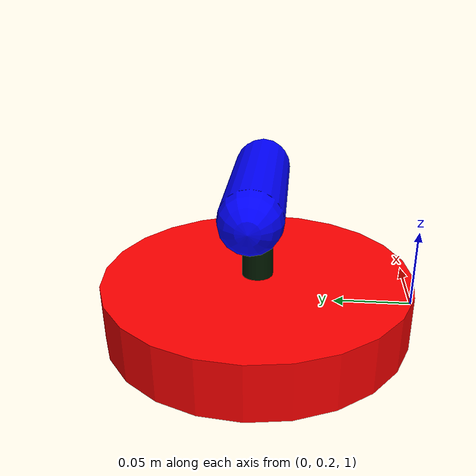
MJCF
<mujoco model="propeller">
    <worldbody>
        <body name="torso" pos="0 0.3 1.0" euler="0 0 0">
          <geom name="torso" size="0.10 0.0184" rgba="1.0 0.0 0.0 1" type="cylinder"/>
          <geom name="hinge" pos="0 0 0.0368" size="0.01 0.0184" rgba="0.0 0.1 0.0 1" type="cylinder"/>
          <!--body name="wing" pos="0 0 0.0552"-->
          <body name="wing" pos="0 0 0.075">
            <joint axis="0 0 1" name="joint1" pos="0 0 0.0184" range="-0.1 0.1" type="hinge"/>
            <geom name="wing" pos="0 0 0" fromto="-.05 0 0 .05 0 0" size="0.0184" rgba="0.0 0.0 1.0 1" type="capsule"/>
          </body>
        </body>
    </worldbody>

    <actuator>
      <motor gear="200" joint="joint1" name="joint1"/>
    </actuator>

</mujoco>
